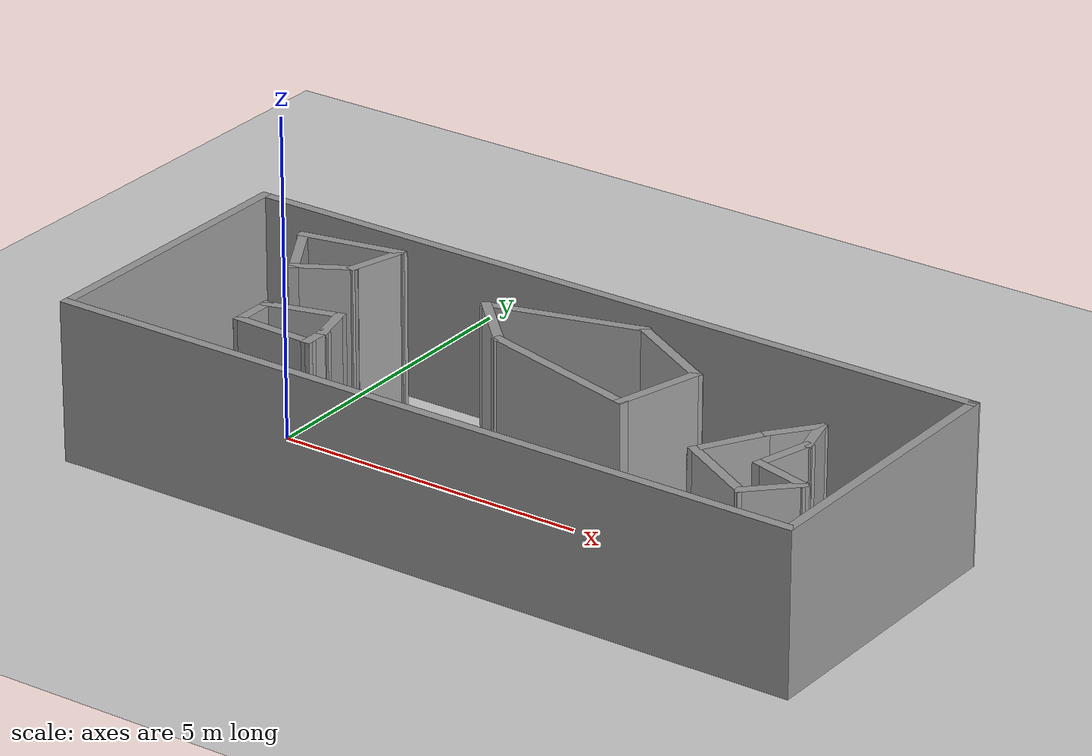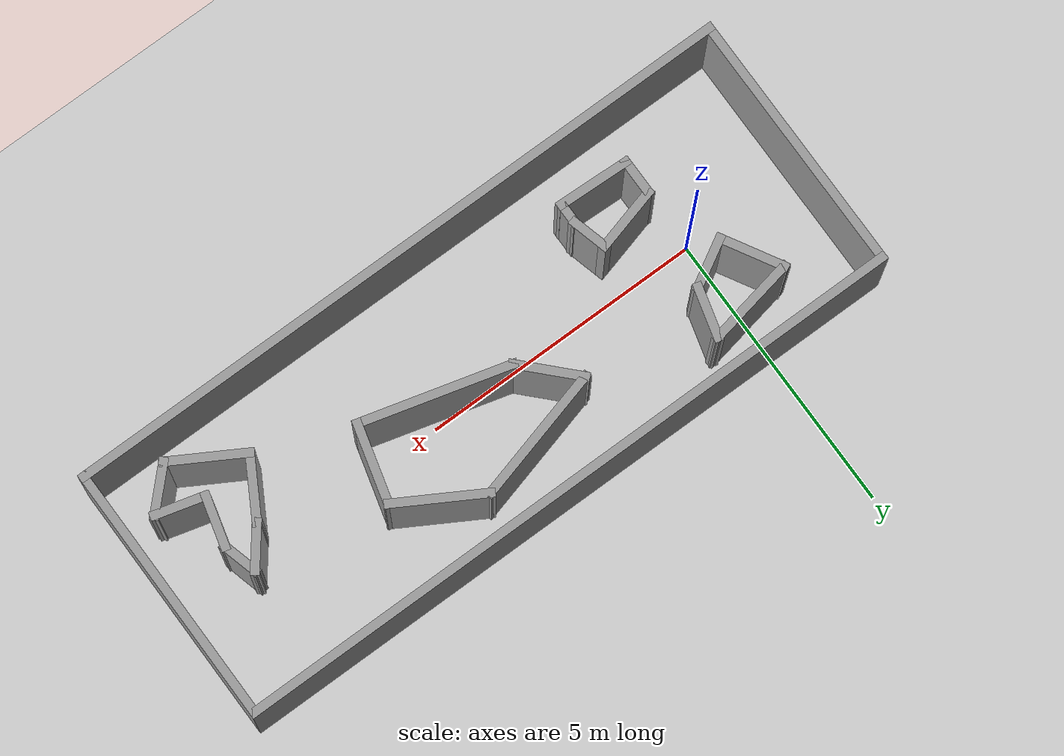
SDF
<sdf version="1.7">
 <world name="default">
  <light name="sun" type="directional">
   <pose>0 0 10 0 -0 0</pose>
   <diffuse>0.8 0.8 0.8 1</diffuse>
   <specular>0.2 0.2 0.2 1</specular>
   <attenuation>
    <range>1000</range>
    <constant>0.9</constant>
    <linear>0.01</linear>
    <quadratic>0.001</quadratic>
   </attenuation>
   <direction>-0.5 0.1 -0.9</direction>
   <spot><inner_angle>0</inner_angle><outer_angle>0</outer_angle><falloff>0</falloff></spot>
  </light>
  <model name="ground_plane">
   <static>1</static>
   <link name="link">
    <collision name="collision">
     <geometry><plane><normal>0 0 1</normal><size>100 100</size></plane></geometry>
     <surface>
      <contact><collide_bitmask>65535</collide_bitmask></contact>
      <friction><ode><mu>100</mu><mu2>50</mu2></ode></friction>
     </surface>
    </collision>
    <visual name="visual">
     <cast_shadows>0</cast_shadows>
     <geometry><plane><normal>0 0 1</normal><size>100 100</size></plane></geometry>
     <material>
      <script><uri>file://media/materials/scripts/gazebo.material</uri><name>Gazebo/Grey</name></script>
     </material>
    </visual>
   </link>
  </model>
  <gravity>0 0 -9.8</gravity>
  <magnetic_field>6e-06 2.3e-05 -4.2e-05</magnetic_field>
  <atmosphere type="adiabatic"/>
  <physics type="ode">
   <max_step_size>0.001</max_step_size>
   <real_time_factor>1</real_time_factor>
   <real_time_update_rate>1000</real_time_update_rate>
  </physics>
  <scene><ambient>0.4 0.4 0.4 1</ambient><background>0.7 0.7 0.7 1</background><shadows>1</shadows></scene>
  <audio><device>default</device></audio>
  <spherical_coordinates>
   <surface_model>EARTH_WGS84</surface_model>
   <latitude_deg>0</latitude_deg>
   <longitude_deg>0</longitude_deg>
   <elevation>0</elevation>
   <heading_deg>0</heading_deg>
  </spherical_coordinates>
  <model name="env1">
   <pose>3.98853 -0.059722 0 0 -0 0</pose>
   <link name="Wall_0">
    <collision name="Wall_0_Collision">
     <geometry><box><size>4.54759 0.15 2.5</size></box></geometry>
     <pose>0 0 1.25 0 -0 0</pose>
    </collision>
    <visual name="Wall_0_Visual">
     <pose>0 0 1.25 0 -0 0</pose>
     <geometry><box><size>4.54759 0.15 2.5</size></box></geometry>
     <material>
      <script><uri>file://media/materials/scripts/gazebo.material</uri><name>Gazebo/Grey</name></script>
      <ambient>1 1 1 1</ambient>
     </material>
     <meta><layer>0</layer></meta>
    </visual>
    <pose>-6.0493 0.074606 0 0 -0 -1.5708</pose>
   </link>
   <link name="Wall_10">
    <collision name="Wall_10_Collision">
     <geometry><box><size>0.75 0.15 2.5</size></box></geometry>
     <pose>0 0 1.25 0 -0 0</pose>
    </collision>
    <visual name="Wall_10_Visual">
     <pose>0 0 1.25 0 -0 0</pose>
     <geometry><box><size>0.75 0.15 2.5</size></box></geometry>
     <material>
      <script><uri>file://media/materials/scripts/gazebo.material</uri><name>Gazebo/Grey</name></script>
      <ambient>1 1 1 1</ambient>
     </material>
     <meta><layer>0</layer></meta>
    </visual>
    <pose>-2.57267 -0.722814 0 0 -0 -1.309</pose>
   </link>
   <link name="Wall_11">
    <collision name="Wall_11_Collision">
     <geometry><box><size>0.5 0.15 2.5</size></box></geometry>
     <pose>0 0 1.25 0 -0 0</pose>
    </collision>
    <visual name="Wall_11_Visual">
     <pose>0 0 1.25 0 -0 0</pose>
     <geometry><box><size>0.5 0.15 2.5</size></box></geometry>
     <material>
      <script><uri>file://media/materials/scripts/gazebo.material</uri><name>Gazebo/Grey</name></script>
      <ambient>1 1 1 1</ambient>
     </material>
     <meta><layer>0</layer></meta>
    </visual>
    <pose>-2.49502 -1.18759 0 0 -0 -1.5708</pose>
   </link>
   <link name="Wall_12">
    <collision name="Wall_12_Collision">
     <geometry><box><size>1.36864 0.15 2.5</size></box></geometry>
     <pose>0 0 1.25 0 -0 0</pose>
    </collision>
    <visual name="Wall_12_Visual">
     <pose>0 0 1.25 0 -0 0</pose>
     <geometry><box><size>1.36864 0.15 2.5</size></box></geometry>
     <material>
      <script><uri>file://media/materials/scripts/gazebo.material</uri><name>Gazebo/Grey</name></script>
      <ambient>1 1 1 1</ambient>
     </material>
     <meta><layer>0</layer></meta>
    </visual>
    <pose>-3.10393 -1.34017 0 0 -0 3.10478</pose>
   </link>
   <link name="Wall_14">
    <collision name="Wall_14_Collision">
     <geometry><box><size>2.5 0.15 2.5</size></box></geometry>
     <pose>0 0 1.25 0 -0 0</pose>
    </collision>
    <visual name="Wall_14_Visual">
     <pose>0 0 1.25 0 -0 0</pose>
     <geometry><box><size>2.5 0.15 2.5</size></box></geometry>
     <material>
      <script><uri>file://media/materials/scripts/gazebo.material</uri><name>Gazebo/Grey</name></script>
      <ambient>1 1 1 1</ambient>
     </material>
     <meta><layer>0</layer></meta>
    </visual>
    <pose>-0.046685 1.35779 0 0 -0 0.261799</pose>
   </link>
   <link name="Wall_15">
    <collision name="Wall_15_Collision">
     <geometry><box><size>1.75 0.15 2.5</size></box></geometry>
     <pose>0 0 1.25 0 -0 0</pose>
    </collision>
    <visual name="Wall_15_Visual">
     <pose>0 0 1.25 0 -0 0</pose>
     <geometry><box><size>1.75 0.15 2.5</size></box></geometry>
     <material>
      <script><uri>file://media/materials/scripts/gazebo.material</uri><name>Gazebo/Grey</name></script>
      <ambient>1 1 1 1</ambient>
     </material>
     <meta><layer>0</layer></meta>
    </visual>
    <pose>1.7811 1.2619 0 0 -0 -0.523599</pose>
   </link>
   <link name="Wall_16">
    <collision name="Wall_16_Collision">
     <geometry><box><size>1.5 0.15 2.5</size></box></geometry>
     <pose>0 0 1.25 0 -0 0</pose>
    </collision>
    <visual name="Wall_16_Visual">
     <pose>0 0 1.25 0 -0 0</pose>
     <geometry><box><size>1.5 0.15 2.5</size></box></geometry>
     <material>
      <script><uri>file://media/materials/scripts/gazebo.material</uri><name>Gazebo/Grey</name></script>
      <ambient>1 1 1 1</ambient>
     </material>
     <meta><layer>0</layer></meta>
    </visual>
    <pose>2.29921 0.2099 0 0 -0 -1.8326</pose>
   </link>
   <link name="Wall_17">
    <collision name="Wall_17_Collision">
     <geometry><box><size>2.75 0.15 2.5</size></box></geometry>
     <pose>0 0 1.25 0 -0 0</pose>
    </collision>
    <visual name="Wall_17_Visual">
     <pose>0 0 1.25 0 -0 0</pose>
     <geometry><box><size>2.75 0.15 2.5</size></box></geometry>
     <material>
      <script><uri>file://media/materials/scripts/gazebo.material</uri><name>Gazebo/Grey</name></script>
      <ambient>1 1 1 1</ambient>
     </material>
     <meta><layer>0</layer></meta>
    </visual>
    <pose>0.868809 -0.105635 0 0 -0 2.87979</pose>
   </link>
   <link name="Wall_18">
    <collision name="Wall_18_Collision">
     <geometry><box><size>1.29399 0.15 2.5</size></box></geometry>
     <pose>0 0 1.25 0 -0 0</pose>
    </collision>
    <visual name="Wall_18_Visual">
     <pose>0 0 1.25 0 -0 0</pose>
     <geometry><box><size>1.29399 0.15 2.5</size></box></geometry>
     <material>
      <script><uri>file://media/materials/scripts/gazebo.material</uri><name>Gazebo/Grey</name></script>
      <ambient>1 1 1 1</ambient>
     </material>
     <meta><layer>0</layer></meta>
    </visual>
    <pose>-0.784272 0.642253 0 0 -0 2.33883</pose>
   </link>
   <link name="Wall_2">
    <collision name="Wall_2_Collision">
     <geometry><box><size>12.2493 0.15 2.5</size></box></geometry>
     <pose>0 0 1.25 0 -0 0</pose>
    </collision>
    <visual name="Wall_2_Visual">
     <pose>0 0 1.25 0 -0 0</pose>
     <geometry><box><size>12.2493 0.15 2.5</size></box></geometry>
     <material>
      <script><uri>file://media/materials/scripts/gazebo.material</uri><name>Gazebo/Grey</name></script>
      <ambient>1 1 1 1</ambient>
     </material>
     <meta><layer>0</layer></meta>
    </visual>
    <pose>-0.000116 2.2734 0 0 -0 3.14159</pose>
   </link>
   <link name="Wall_20">
    <collision name="Wall_20_Collision">
     <geometry><box><size>1.25 0.15 2.5</size></box></geometry>
     <pose>0 0 1.25 0 -0 0</pose>
    </collision>
    <visual name="Wall_20_Visual">
     <pose>0 0 1.25 0 -0 0</pose>
     <geometry><box><size>1.25 0.15 2.5</size></box></geometry>
     <material>
      <script><uri>file://media/materials/scripts/gazebo.material</uri><name>Gazebo/Grey</name></script>
      <ambient>1 1 1 1</ambient>
     </material>
     <meta><layer>0</layer></meta>
    </visual>
    <pose>4.019 -0.585067 0 0 -0 -2.0944</pose>
   </link>
   <link name="Wall_21">
    <collision name="Wall_21_Collision">
     <geometry><box><size>1.5 0.15 2.5</size></box></geometry>
     <pose>0 0 1.25 0 -0 0</pose>
    </collision>
    <visual name="Wall_21_Visual">
     <pose>0 0 1.25 0 -0 0</pose>
     <geometry><box><size>1.5 0.15 2.5</size></box></geometry>
     <material>
      <script><uri>file://media/materials/scripts/gazebo.material</uri><name>Gazebo/Grey</name></script>
      <ambient>1 1 1 1</ambient>
     </material>
     <meta><layer>0</layer></meta>
    </visual>
    <pose>4.32857 -1.39888 0 0 -0 -0.523599</pose>
   </link>
   <link name="Wall_22">
    <collision name="Wall_22_Collision">
     <geometry><box><size>1 0.15 2.5</size></box></geometry>
     <pose>0 0 1.25 0 -0 0</pose>
    </collision>
    <visual name="Wall_22_Visual">
     <pose>0 0 1.25 0 -0 0</pose>
     <geometry><box><size>1 0.15 2.5</size></box></geometry>
     <material>
      <script><uri>file://media/materials/scripts/gazebo.material</uri><name>Gazebo/Grey</name></script>
      <ambient>1 1 1 1</ambient>
     </material>
     <meta><layer>0</layer></meta>
    </visual>
    <pose>5.21366 -1.43586 0 0 -0 0.785398</pose>
   </link>
   <link name="Wall_23">
    <collision name="Wall_23_Collision">
     <geometry><box><size>1 0.15 2.5</size></box></geometry>
     <pose>0 0 1.25 0 -0 0</pose>
    </collision>
    <visual name="Wall_23_Visual">
     <pose>0 0 1.25 0 -0 0</pose>
     <geometry><box><size>1 0.15 2.5</size></box></geometry>
     <material>
      <script><uri>file://media/materials/scripts/gazebo.material</uri><name>Gazebo/Grey</name></script>
      <ambient>1 1 1 1</ambient>
     </material>
     <meta><layer>0</layer></meta>
    </visual>
    <pose>5.10366 -1.02534 0 0 -0 2.87979</pose>
   </link>
   <link name="Wall_24">
    <collision name="Wall_24_Collision">
     <geometry><box><size>1 0.15 2.5</size></box></geometry>
     <pose>0 0 1.25 0 -0 0</pose>
    </collision>
    <visual name="Wall_24_Visual">
     <pose>0 0 1.25 0 -0 0</pose>
     <geometry><box><size>1 0.15 2.5</size></box></geometry>
     <material>
      <script><uri>file://media/materials/scripts/gazebo.material</uri><name>Gazebo/Grey</name></script>
      <ambient>1 1 1 1</ambient>
     </material>
     <meta><layer>0</layer></meta>
    </visual>
    <pose>4.80314 -0.504826 0 0 -0 1.309</pose>
   </link>
   <link name="Wall_25">
    <collision name="Wall_25_Collision">
     <geometry><box><size>0.75 0.15 2.5</size></box></geometry>
     <pose>0 0 1.25 0 -0 0</pose>
    </collision>
    <visual name="Wall_25_Visual">
     <pose>0 0 1.25 0 -0 0</pose>
     <geometry><box><size>0.75 0.15 2.5</size></box></geometry>
     <material>
      <script><uri>file://media/materials/scripts/gazebo.material</uri><name>Gazebo/Grey</name></script>
      <ambient>1 1 1 1</ambient>
     </material>
     <meta><layer>0</layer></meta>
    </visual>
    <pose>4.83549 0.19547 0 0 -0 1.8326</pose>
   </link>
   <link name="Wall_26">
    <collision name="Wall_26_Collision">
     <geometry><box><size>0.90365 0.15 2.5</size></box></geometry>
     <pose>0 0 1.25 0 -0 0</pose>
    </collision>
    <visual name="Wall_26_Visual">
     <pose>0 0 1.25 0 -0 0</pose>
     <geometry><box><size>0.90365 0.15 2.5</size></box></geometry>
     <material>
      <script><uri>file://media/materials/scripts/gazebo.material</uri><name>Gazebo/Grey</name></script>
      <ambient>1 1 1 1</ambient>
     </material>
     <meta><layer>0</layer></meta>
    </visual>
    <pose>4.52592 0.188247 0 0 -0 -2.23377</pose>
   </link>
   <link name="Wall_28">
    <collision name="Wall_28_Collision">
     <geometry><box><size>1.25 0.15 2.5</size></box></geometry>
     <pose>0 0 1.25 0 -0 0</pose>
    </collision>
    <visual name="Wall_28_Visual">
     <pose>0 0 1.25 0 -0 0</pose>
     <geometry><box><size>1.25 0.15 2.5</size></box></geometry>
     <material>
      <script><uri>file://media/materials/scripts/gazebo.material</uri><name>Gazebo/Grey</name></script>
      <ambient>1 1 1 1</ambient>
     </material>
     <meta><layer>0</layer></meta>
    </visual>
    <pose>-4.45512 1.00562 0 0 -0 -1.0472</pose>
   </link>
   <link name="Wall_29">
    <collision name="Wall_29_Collision">
     <geometry><box><size>1 0.15 2.5</size></box></geometry>
     <pose>0 0 1.25 0 -0 0</pose>
    </collision>
    <visual name="Wall_29_Visual">
     <pose>0 0 1.25 0 -0 0</pose>
     <geometry><box><size>1 0.15 2.5</size></box></geometry>
     <material>
      <script><uri>file://media/materials/scripts/gazebo.material</uri><name>Gazebo/Grey</name></script>
      <ambient>1 1 1 1</ambient>
     </material>
     <meta><layer>0</layer></meta>
    </visual>
    <pose>-3.81205 0.741811 0 0 -0 0.523599</pose>
   </link>
   <link name="Wall_30">
    <collision name="Wall_30_Collision">
     <geometry><box><size>1 0.15 2.5</size></box></geometry>
     <pose>0 0 1.25 0 -0 0</pose>
    </collision>
    <visual name="Wall_30_Visual">
     <pose>0 0 1.25 0 -0 0</pose>
     <geometry><box><size>1 0.15 2.5</size></box></geometry>
     <material>
      <script><uri>file://media/materials/scripts/gazebo.material</uri><name>Gazebo/Grey</name></script>
      <ambient>1 1 1 1</ambient>
     </material>
     <meta><layer>0</layer></meta>
    </visual>
    <pose>-3.33399 1.36483 0 0 -0 1.309</pose>
   </link>
   <link name="Wall_31">
    <collision name="Wall_31_Collision">
     <geometry><box><size>1.68443 0.15 2.5</size></box></geometry>
     <pose>0 0 1.25 0 -0 0</pose>
    </collision>
    <visual name="Wall_31_Visual">
     <pose>0 0 1.25 0 -0 0</pose>
     <geometry><box><size>1.68443 0.15 2.5</size></box></geometry>
     <material>
      <script><uri>file://media/materials/scripts/gazebo.material</uri><name>Gazebo/Grey</name></script>
      <ambient>1 1 1 1</ambient>
     </material>
     <meta><layer>0</layer></meta>
    </visual>
    <pose>-3.97706 1.62864 0 0 -0 -2.94919</pose>
   </link>
   <link name="Wall_4">
    <collision name="Wall_4_Collision">
     <geometry><box><size>12.25 0.15 2.5</size></box></geometry>
     <pose>0 0 1.25 0 -0 0</pose>
    </collision>
    <visual name="Wall_4_Visual">
     <pose>0 0 1.25 0 -0 0</pose>
     <geometry><box><size>12.25 0.15 2.5</size></box></geometry>
     <material>
      <script><uri>file://media/materials/scripts/gazebo.material</uri><name>Gazebo/Grey</name></script>
      <ambient>1 1 1 1</ambient>
     </material>
     <meta><layer>0</layer></meta>
    </visual>
    <pose>0 -2.2734 0 0 -0 3.14159</pose>
   </link>
   <link name="Wall_6">
    <collision name="Wall_6_Collision">
     <geometry><box><size>4.6702 0.15 2.5</size></box></geometry>
     <pose>0 0 1.25 0 -0 0</pose>
    </collision>
    <visual name="Wall_6_Visual">
     <pose>0 0 1.25 0 -0 0</pose>
     <geometry><box><size>4.6702 0.15 2.5</size></box></geometry>
     <material>
      <script><uri>file://media/materials/scripts/gazebo.material</uri><name>Gazebo/Grey</name></script>
      <ambient>1 1 1 1</ambient>
     </material>
     <meta><layer>0</layer></meta>
    </visual>
    <pose>6.05 -0.0133 0 0 -0 1.5708</pose>
   </link>
   <link name="Wall_8">
    <collision name="Wall_8_Collision">
     <geometry><box><size>0.75 0.15 2.5</size></box></geometry>
     <pose>0 0 1.25 0 -0 0</pose>
    </collision>
    <visual name="Wall_8_Visual">
     <pose>0 0 1.25 0 -0 0</pose>
     <geometry><box><size>0.75 0.15 2.5</size></box></geometry>
     <material>
      <script><uri>file://media/materials/scripts/gazebo.material</uri><name>Gazebo/Grey</name></script>
      <ambient>1 1 1 1</ambient>
     </material>
     <meta><layer>0</layer></meta>
    </visual>
    <pose>-3.71283 -1.01774 0 0 -0 1.5708</pose>
   </link>
   <link name="Wall_9">
    <collision name="Wall_9_Collision">
     <geometry><box><size>1.25 0.15 2.5</size></box></geometry>
     <pose>0 0 1.25 0 -0 0</pose>
    </collision>
    <visual name="Wall_9_Visual">
     <pose>0 0 1.25 0 -0 0</pose>
     <geometry><box><size>1.25 0.15 2.5</size></box></geometry>
     <material>
      <script><uri>file://media/materials/scripts/gazebo.material</uri><name>Gazebo/Grey</name></script>
      <ambient>1 1 1 1</ambient>
     </material>
     <meta><layer>0</layer></meta>
    </visual>
    <pose>-3.18157 -0.575387 0 0 -0 0.261799</pose>
   </link>
   <static>1</static>
  </model>
 </world>
</sdf>
